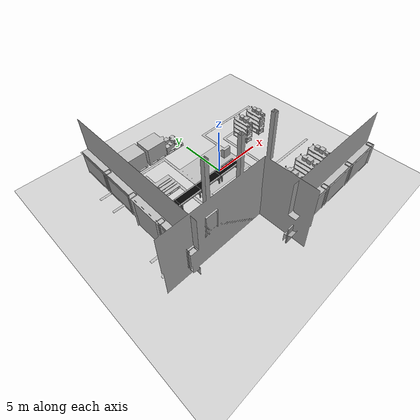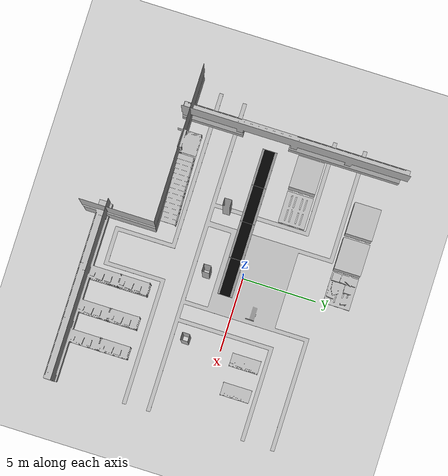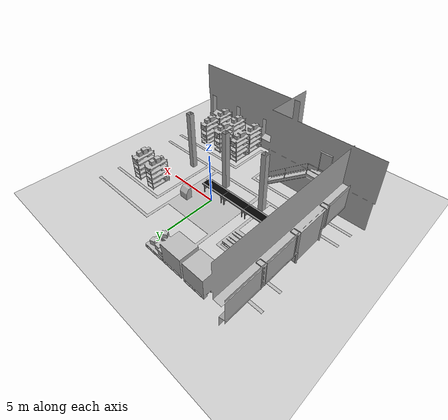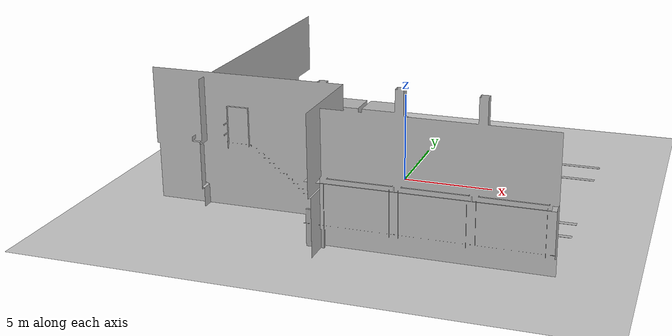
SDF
<sdf version="1.6">
 <world name="default">
  <plugin filename="libgazebo_ros_state.so" name="gazebo_ros_state"/>
  <light name="sun" type="directional">
   <pose>0 0 10 0 -0 0</pose>
   <diffuse>0.8 0.8 0.8 1</diffuse>
   <specular>0.2 0.2 0.2 1</specular>
   <attenuation>
    <range>1000</range>
    <constant>0.9</constant>
    <linear>0.01</linear>
    <quadratic>0.001</quadratic>
   </attenuation>
   <direction>-0.5 0.1 -0.9</direction>
  </light>
  <model name="ground_plane">
   <static>1</static>
   <link name="link">
    <collision name="collision">
     <geometry><plane><normal>0 0 1</normal><size>100 100</size></plane></geometry>
     <surface><friction><ode><mu>1</mu><mu2>1</mu2></ode></friction></surface>
    </collision>
    <visual name="visual">
     <cast_shadows>0</cast_shadows>
     <geometry><plane><normal>0 0 1</normal><size>100 100</size></plane></geometry>
     <material>
      <specular>0 0 0 1</specular>
      <texture><diffuse>models/padlo.jpg</diffuse><repeat>100 100</repeat></texture>
     </material>
    </visual>
   </link>
  </model>
  <gravity>0 0 -9.8</gravity>
  <magnetic_field>6e-06 2.3e-05 -4.2e-05</magnetic_field>
  <atmosphere type="adiabatic"/>
  <physics name="default_physics" default="0" type="ode">
   <max_step_size>0.001</max_step_size>
   <real_time_factor>1</real_time_factor>
   <real_time_update_rate>1000</real_time_update_rate>
  </physics>
  <scene><ambient>0.4 0.4 0.4 1</ambient><background>0.7 0.7 0.7 1</background><shadows>1</shadows></scene>
  <audio><device>default</device></audio>
  <spherical_coordinates>
   <surface_model>EARTH_WGS84</surface_model>
   <latitude_deg>0</latitude_deg>
   <longitude_deg>0</longitude_deg>
   <elevation>0</elevation>
   <heading_deg>0</heading_deg>
  </spherical_coordinates>
  <model name="workcell">
   <static>1</static>
   <link name="link">
    <visual name="visual"><geometry><mesh><uri>model://workcell/meshes/mesh.dae</uri></mesh></geometry></visual>
    <collision name="floor">
     <pose>0 0 -0.1 0 -0 0</pose>
     <geometry><box><size>20.1026 20.1026 0.2</size></box></geometry>
     <surface><contact><ode><max_vel>0</max_vel><min_depth>0.001</min_depth></ode></contact></surface>
    </collision>
    <collision name="wall1">
     <pose>4.13686 -10.0212 3.48855 0 -0 0</pose>
     <geometry><box><size>12.0768 0.72902 6.97771</size></box></geometry>
    </collision>
    <collision name="wall2">
     <pose>-6.58151 -8.924 3.48855 0 -0 0</pose>
     <geometry><box><size>10.5921 5.00198 6.97771</size></box></geometry>
    </collision>
    <collision name="wall3">
     <pose>-9.25721 0.6135 3.48855 0 -0 0</pose>
     <geometry><box><size>0.72902 15.2908 6.97771</size></box></geometry>
    </collision>
    <collision name="rack1">
     <pose>7.35056 1.7443 1.41643 0 -0 0</pose>
     <geometry><box><size>0.84444 1.95581 2.83286</size></box></geometry>
    </collision>
    <collision name="rack2">
     <pose>5.36795 1.7443 1.41643 0 -0 0</pose>
     <geometry><box><size>0.84444 1.95581 2.83286</size></box></geometry>
    </collision>
    <collision name="rack3">
     <pose>7.00142 -7.6467 1.41643 0 -0 0</pose>
     <geometry><box><size>0.84444 3.91162 2.83286</size></box></geometry>
    </collision>
    <collision name="rack4">
     <pose>4.97338 -7.6467 1.41643 0 -0 0</pose>
     <geometry><box><size>0.84444 3.91162 2.83286</size></box></geometry>
    </collision>
    <collision name="rack5">
     <pose>2.66949 -7.6467 1.41643 0 -0 0</pose>
     <geometry><box><size>0.84444 3.91162 2.83286</size></box></geometry>
    </collision>
    <collision name="large_pallet1">
     <pose>-3.33609 6.31883 1.04257 0 -0 0</pose>
     <geometry><box><size>2.14726 1.79349 2.08514</size></box></geometry>
    </collision>
    <collision name="large_pallet2">
     <pose>-5.74492 6.31883 1.04257 0 -0 0</pose>
     <geometry><box><size>2.14726 1.79349 2.08514</size></box></geometry>
    </collision>
    <collision name="large_pallet3">
     <pose>-7.55868 1.91644 1.04257 0 -0 0</pose>
     <geometry><box><size>2.14726 1.79432 2.08514</size></box></geometry>
    </collision>
    <collision name="empty_pallet1">
     <pose>-5.29667 1.91644 0.1636 0 -0 0</pose>
     <geometry><box><size>2.14726 1.79349 0.3272</size></box></geometry>
    </collision>
    <collision name="box_pallet1">
     <pose>-1.09806 6.31883 0.61958 0 -0 0</pose>
     <geometry><box><size>2.14726 1.79349 1.23916</size></box></geometry>
    </collision>
    <collision name="pole1">
     <pose>5.02174 -2.39478 3.02208 0 -0 0</pose>
     <geometry><box><size>0.49161 0.49161 6.04415</size></box></geometry>
    </collision>
    <collision name="pole2">
     <pose>0.47071 -2.39478 3.02208 0 -0 0</pose>
     <geometry><box><size>0.49161 0.49161 6.04415</size></box></geometry>
    </collision>
    <collision name="pole3">
     <pose>-3.93786 -2.39478 3.02208 0 -0 0</pose>
     <geometry><box><size>0.49161 0.49161 6.04415</size></box></geometry>
    </collision>
    <collision name="control_panel">
     <pose>2.07015 1.16224 0.561315 0 -0 0</pose>
     <geometry><box><size>0.86733 0.6001 1.12263</size></box></geometry>
    </collision>
   </link>
   <pose>-0.040107 0.052292 0 0 -0 0</pose>
  </model>
  <include>
   <name>conveyor_0</name>
   <pose>0.216477 -0.803 0.0 0.0 0.0 0.0</pose>
   <uri>model://conveyor</uri>
  </include>
  <include>
   <name>conveyor_1</name>
   <pose>-2.291240 -0.803 0.0 0.0 0.0 0.0</pose>
   <uri>model://conveyor</uri>
  </include>
  <include>
   <name>conveyor_2</name>
   <pose>-4.780280 -0.803 0.0 0.0 0.0 0.0</pose>
   <uri>model://conveyor</uri>
  </include>
  <include>
   <name>conveyor_3</name>
   <pose>-7.261170 -0.803 0.0 0.0 0.0 0.0</pose>
   <uri>model://conveyor</uri>
  </include>
 </world>
</sdf>

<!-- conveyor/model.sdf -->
<sdf version='1.6'>
  <model name='conveyor'>
    <link name='link'>
      <self_collide>0</self_collide>
      <enable_wind>0</enable_wind>
      <kinematic>0</kinematic>
      <pose frame=''>0 0 0 0 -0 0</pose>
      <gravity>1</gravity>
      <inertial>
        <mass>1</mass>
        <pose frame=''>0 0 0 0 -0 0</pose>
        <inertia>
          <ixx>1</ixx>
          <ixy>0</ixy>
          <ixz>0</ixz>
          <iyy>1</iyy>
          <iyz>0</iyz>
          <izz>1</izz>
        </inertia>
      </inertial>
      <visual name='visual'>
        <pose frame=''>0 0 0.95 0 -0 0</pose>
        <geometry>
          <mesh>
            <scale>0.5 0.5 0.5</scale>
            <uri>model://conveyor/meshes/conveyor2.dae</uri>
          </mesh>
        </geometry>
      </visual>
      <collision name='collision_0'>
        <laser_retro>0</laser_retro>
        <max_contacts>10</max_contacts>
        <pose frame=''>0 0 0.95 0 -0 0</pose>
        <geometry>
          <box>
            <size>2.5 1 0.1</size>
          </box>
        </geometry>
        <surface>
          <friction>
            <ode>
              <mu>1</mu>
              <mu2>1</mu2>
              <fdir1>0 0 0</fdir1>
              <slip1>0</slip1>
              <slip2>0</slip2>
            </ode>
            <torsional>
              <coefficient>1</coefficient>
              <patch_radius>0</patch_radius>
              <surface_radius>0</surface_radius>
              <use_patch_radius>1</use_patch_radius>
              <ode>
                <slip>0</slip>
              </ode>
            </torsional>
          </friction>
          <bounce>
            <restitution_coefficient>0</restitution_coefficient>
            <threshold>1e+06</threshold>
          </bounce>
          <contact>
            <collide_without_contact>0</collide_without_contact>
            <collide_without_contact_bitmask>1</collide_without_contact_bitmask>
            <collide_bitmask>1</collide_bitmask>
            <ode>
              <soft_cfm>0</soft_cfm>
              <soft_erp>0.2</soft_erp>
              <kp>1e+13</kp>
              <kd>1</kd>
              <max_vel>0.01</max_vel>
              <min_depth>0</min_depth>
            </ode>
            <bullet>
              <split_impulse>1</split_impulse>
              <split_impulse_penetration_threshold>-0.01</split_impulse_penetration_threshold>
              <soft_cfm>0</soft_cfm>
              <soft_erp>0.2</soft_erp>
              <kp>1e+13</kp>
              <kd>1</kd>
            </bullet>
          </contact>
        </surface>
      </collision>
    </link>
    <static>1</static>
    <allow_auto_disable>1</allow_auto_disable>
  </model>
</sdf>
